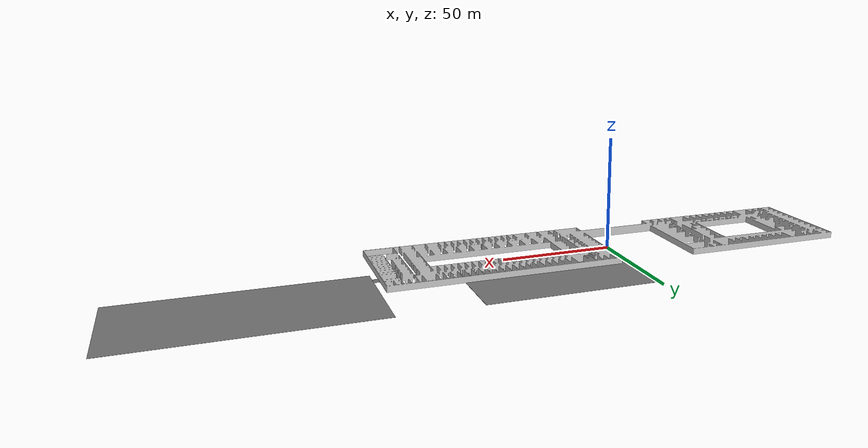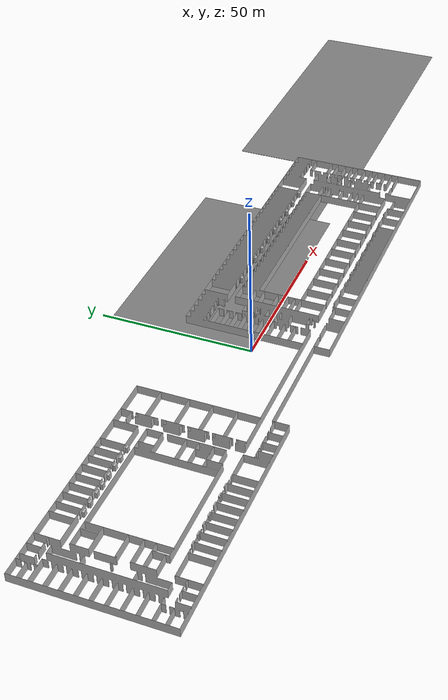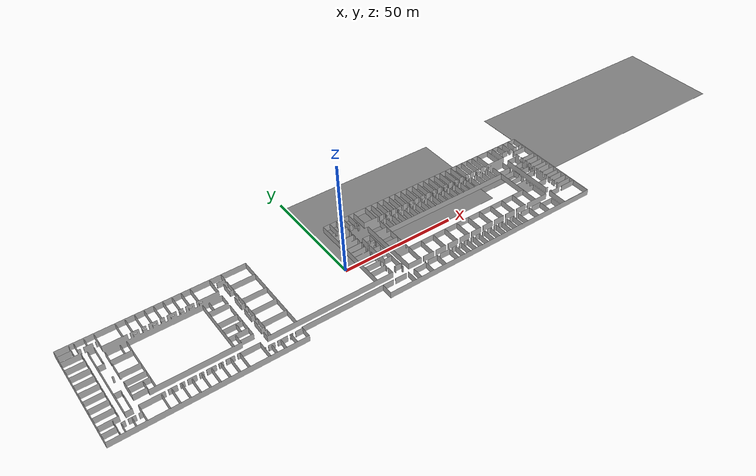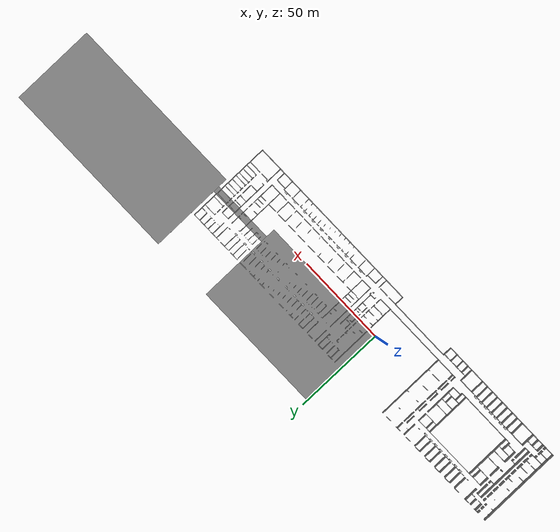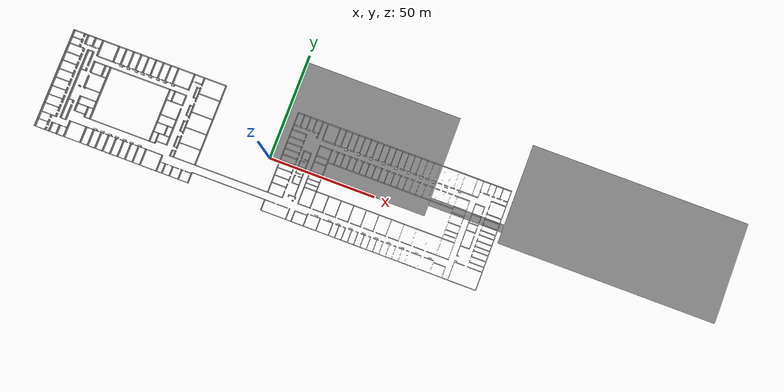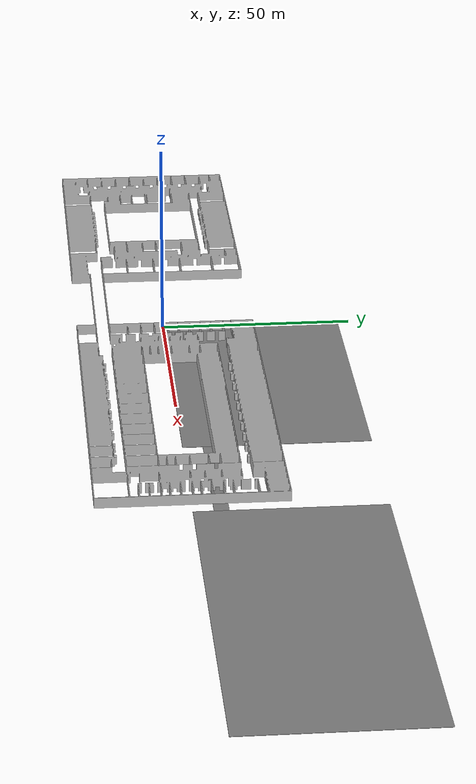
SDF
<sdf version='1.6'>
  <world name='default'>

    <gravity>0 0 -9.8</gravity>

    <scene>
      <ambient>0.6 0.6 0.6 1.0</ambient>
      <background>0.2 0.2 0.2 1.0</background>
    </scene>

    <gui fullscreen='0'>
      <camera name='user_camera'>
        <pose frame=''>100 -115 135 0 0.85 1.57</pose>
        <view_controller>orbit</view_controller>
        <projection_type>perspective</projection_type>
      </camera>
    </gui>

    <light name='sun' type='directional'>
      <pose frame=''>10.0 10.0 30 0 -0 0</pose>
      <diffuse>0.8 0.8 0.8 1</diffuse>
      <specular>0.1 0.1 0.1 1</specular>
      <cast_shadows>0</cast_shadows>
      <attenuation>
        <range>1000</range>
        <constant>0.9</constant>
        <linear>0.01</linear>
        <quadratic>0.001</quadratic>
      </attenuation>
      <direction>0 0 -1</direction>
    </light>

    <model name='ground_plane_povo_1'>
      <static>1</static>
      <pose frame=''>36.9 23.5 -0.05 0 0 0</pose>
      <link name='link'>
        <collision name='collision'>
          <geometry>
            <box>
              <size>73.8 47 0.1</size>
            </box>
          </geometry>
          <surface>
            <friction>
              <ode>
                <mu>100</mu>
                <mu2>50</mu2>
              </ode>
              <torsional>
                <ode/>
              </torsional>
            </friction>
            <contact>
              <ode/>
            </contact>
            <bounce/>
          </surface>
          <max_contacts>10</max_contacts>
        </collision>
        <visual name='visual'>
          <geometry>
            <box>
              <size>73.8 47 0.1</size>
            </box>
          </geometry>
          <material>
            <ambient>0.5 0.5 0.5 1</ambient>
            <diffuse>0.5 0.5 0.5 1</diffuse>
          </material>
        </visual>
        <self_collide>0</self_collide>
        <kinematic>0</kinematic>
        <gravity>1</gravity>
      </link>
    </model>

    <model name='ground_plane_povo_2'>
      <static>1</static>
      <pose frame=''>159.2 23.5 -0.05 0 0 0</pose>
      <link name='link'>
        <collision name='collision'>
          <geometry>
            <box>
              <size>101.6 47 0.1</size>
            </box>
          </geometry>
          <surface>
            <friction>
              <ode>
                <mu>100</mu>
                <mu2>50</mu2>
              </ode>
              <torsional>
                <ode/>
              </torsional>
            </friction>
            <contact>
              <ode/>
            </contact>
            <bounce/>
          </surface>
          <max_contacts>10</max_contacts>
        </collision>
        <visual name='visual'>
          <geometry>
            <box>
              <size>101.6 47 0.1</size>
            </box>
          </geometry>
          <material>
            <ambient>0.5 0.5 0.5 1</ambient>
            <diffuse>0.5 0.5 0.5 1</diffuse>
          </material>
        </visual>
        <self_collide>0</self_collide>
        <kinematic>0</kinematic>
        <gravity>1</gravity>
      </link>
    </model>

    <model name='ground_plane_tunnel'>
      <static>1</static>
      <pose frame=''>91.1 6.87 -0.05 0 0 0</pose>
      <link name='link'>
        <collision name='collision'>
          <geometry>
            <box>
              <size>34.61 3.7 0.1</size>
            </box>
          </geometry>
          <surface>
            <friction>
              <ode>
                <mu>100</mu>
                <mu2>50</mu2>
              </ode>
              <torsional>
                <ode/>
              </torsional>
            </friction>
            <contact>
              <ode/>
            </contact>
            <bounce/>
          </surface>
          <max_contacts>10</max_contacts>
        </collision>
        <visual name='visual'>
          <geometry>
            <box>
              <size>34.61 3.7 0.1</size>
            </box>
          </geometry>
          <material>
            <ambient>0.5 0.5 0.5 1</ambient>
            <diffuse>0.5 0.5 0.5 1</diffuse>
          </material>
        </visual>
        <self_collide>0</self_collide>
        <kinematic>0</kinematic>
        <gravity>1</gravity>
      </link>
    </model>

    <model name="povo_walls">
      <pose frame=''>0 0 0 0 0 -1.5708</pose>
      <include>
        <static>true</static>
        <uri>model://povo</uri>
      </include>
    </model>
  </world>
</sdf>

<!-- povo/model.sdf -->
<sdf version="1.6">
<model name='povo'>
      <static>1</static>
      <link name='walls'>
        <self_collide>0</self_collide>
        <kinematic>0</kinematic>
        <gravity>1</gravity>

        <visual name='Walls_Visual'>
          <geometry>
            <mesh>
              <uri>model://povo/meshes/povo.dae</uri>
            </mesh>
          </geometry>
          <cast_shadows>1</cast_shadows>
          <transparency>0</transparency>
        </visual>

        <collision name='Walls_Collision'>
          <geometry>
            <mesh>
              <uri>model://povo/meshes/povo.dae</uri>
            </mesh>
          </geometry>
        </collision>

      </link>
    </model>
</sdf>
